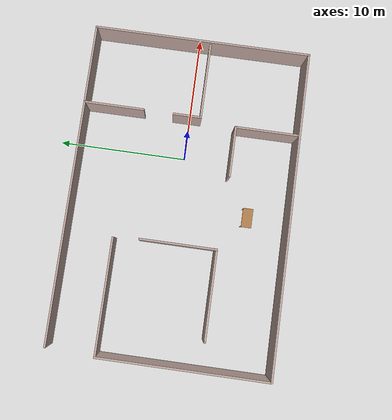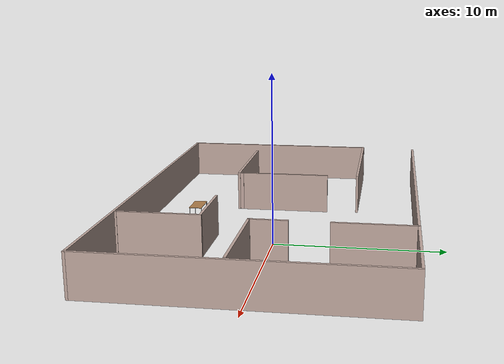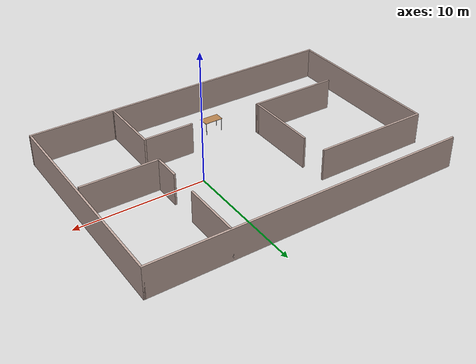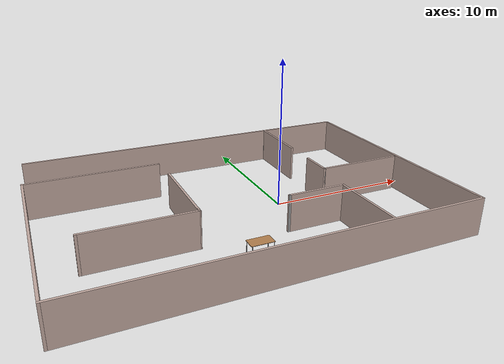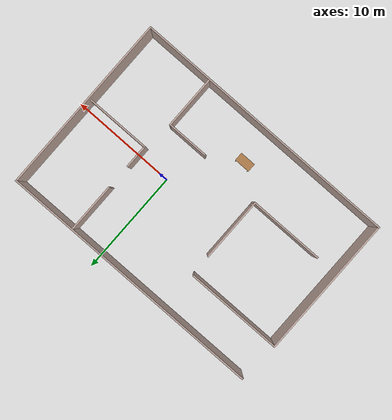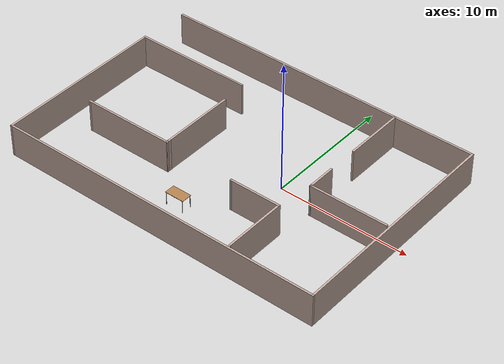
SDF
<sdf version="1.7">
 <world name="default">
  <light name="sun" type="directional">
   <pose>0 0 10 0 -0 0</pose>
   <diffuse>0.8 0.8 0.8 1</diffuse>
   <specular>0.2 0.2 0.2 1</specular>
   <attenuation>
    <range>1000</range>
    <constant>0.9</constant>
    <linear>0.01</linear>
    <quadratic>0.001</quadratic>
   </attenuation>
   <direction>-0.5 0.1 -0.9</direction>
   <spot><inner_angle>0</inner_angle><outer_angle>0</outer_angle><falloff>0</falloff></spot>
  </light>
  <gravity>0 0 -9.8</gravity>
  <magnetic_field>6e-06 2.3e-05 -4.2e-05</magnetic_field>
  <atmosphere type="adiabatic"/>
  <physics type="ode">
   <max_step_size>0.001</max_step_size>
   <real_time_factor>1</real_time_factor>
   <real_time_update_rate>1000</real_time_update_rate>
  </physics>
  <scene><ambient>0.4 0.4 0.4 1</ambient><background>0.7 0.7 0.7 1</background><shadows>1</shadows></scene>
  <spherical_coordinates>
   <surface_model>EARTH_WGS84</surface_model>
   <latitude_deg>0</latitude_deg>
   <longitude_deg>0</longitude_deg>
   <elevation>0</elevation>
   <heading_deg>0</heading_deg>
  </spherical_coordinates>
  <model name="vmsworld">
   <pose>-3.40589 -0.155021 0 0 -0 0</pose>
   <link name="Wall_37">
    <collision name="Wall_37_Collision">
     <geometry><box><size>25 0.15 2.5</size></box></geometry>
     <pose>0 0 1.25 0 -0 0</pose>
    </collision>
    <visual name="Wall_37_Visual">
     <pose>0 0 1.25 0 -0 0</pose>
     <geometry><box><size>25 0.15 2.5</size></box></geometry>
     <material>
      <script><uri>file://media/materials/scripts/gazebo.material</uri><name>Gazebo/Grey</name></script>
      <ambient>0.760784 0.662745 0.627451 1</ambient>
     </material>
     <meta><layer>0</layer></meta>
    </visual>
    <pose>0.125 8.425 0 0 -0 0</pose>
   </link>
   <link name="Wall_38">
    <collision name="Wall_38_Collision">
     <geometry><box><size>17 0.15 2.5</size></box></geometry>
     <pose>0 0 1.25 0 -0 0</pose>
    </collision>
    <visual name="Wall_38_Visual">
     <pose>0 0 1.25 0 -0 0</pose>
     <geometry><box><size>17 0.15 2.5</size></box></geometry>
     <material>
      <script><uri>file://media/materials/scripts/gazebo.material</uri><name>Gazebo/Grey</name></script>
      <ambient>0.760784 0.662745 0.627451 1</ambient>
     </material>
     <meta><layer>0</layer></meta>
    </visual>
    <pose>12.55 0 0 0 -0 -1.5708</pose>
   </link>
   <link name="Wall_39">
    <collision name="Wall_39_Collision">
     <geometry><box><size>25.25 0.15 2.5</size></box></geometry>
     <pose>0 0 1.25 0 -0 0</pose>
    </collision>
    <visual name="Wall_39_Visual">
     <pose>0 0 1.25 0 -0 0</pose>
     <geometry><box><size>25.25 0.15 2.5</size></box></geometry>
     <material>
      <script><uri>file://media/materials/scripts/gazebo.material</uri><name>Gazebo/Grey</name></script>
      <ambient>0.760784 0.662745 0.627451 1</ambient>
     </material>
     <meta><layer>0</layer></meta>
    </visual>
    <pose>0 -8.425 0 0 -0 3.14159</pose>
   </link>
   <link name="Wall_40">
    <collision name="Wall_40_Collision">
     <geometry><box><size>13.25 0.15 2.5</size></box></geometry>
     <pose>0 0 1.25 0 -0 0</pose>
    </collision>
    <visual name="Wall_40_Visual">
     <pose>0 0 1.25 0 -0 0</pose>
     <geometry><box><size>13.25 0.15 2.5</size></box></geometry>
     <material>
      <script><uri>file://media/materials/scripts/gazebo.material</uri><name>Gazebo/Grey</name></script>
      <ambient>0.760784 0.662745 0.627451 1</ambient>
     </material>
     <meta><layer>0</layer></meta>
    </visual>
    <pose>-12.55 -1.875 0 0 -0 1.5708</pose>
   </link>
   <link name="Wall_41">
    <collision name="Wall_41_Collision">
     <geometry><box><size>9 0.15 2.5</size></box></geometry>
     <pose>0 0 1.25 0 -0 0</pose>
    </collision>
    <visual name="Wall_41_Visual">
     <pose>0 0 1.25 0 -0 0</pose>
     <geometry><box><size>9 0.15 2.5</size></box></geometry>
     <material>
      <script><uri>file://media/materials/scripts/gazebo.material</uri><name>Gazebo/Grey</name></script>
      <ambient>0.760784 0.662745 0.627451 1</ambient>
     </material>
     <meta><layer>0</layer></meta>
    </visual>
    <pose>-8.125 4.675 0 0 -0 0</pose>
   </link>
   <link name="Wall_43">
    <collision name="Wall_43_Collision">
     <geometry><box><size>6 0.15 2.5</size></box></geometry>
     <pose>0 0 1.25 0 -0 0</pose>
    </collision>
    <visual name="Wall_43_Visual">
     <pose>0 0 1.25 0 -0 0</pose>
     <geometry><box><size>6 0.15 2.5</size></box></geometry>
     <material>
      <script><uri>file://media/materials/scripts/gazebo.material</uri><name>Gazebo/Grey</name></script>
      <ambient>0.760784 0.662745 0.627451 1</ambient>
     </material>
     <meta><layer>0</layer></meta>
    </visual>
    <pose>-3.51197 -0.277313 0 0 -0 -1.5708</pose>
   </link>
   <link name="Wall_44">
    <collision name="Wall_44_Collision">
     <geometry><box><size>0.16 0.15 2.5</size></box></geometry>
     <pose>0 0 1.25 0 -0 0</pose>
    </collision>
    <visual name="Wall_44_Visual">
     <pose>0 0 1.25 0 -0 0</pose>
     <geometry><box><size>0.16 0.15 2.5</size></box></geometry>
     <material>
      <script><uri>file://media/materials/scripts/gazebo.material</uri><name>Gazebo/Grey</name></script>
      <ambient>0.760784 0.662745 0.627451 1</ambient>
     </material>
     <meta><layer>0</layer></meta>
    </visual>
    <pose>-3.50697 -3.20231 0 0 -0 0</pose>
   </link>
   <link name="Wall_48">
    <collision name="Wall_48_Collision">
     <geometry><box><size>0.16 0.15 2.5</size></box></geometry>
     <pose>0 0 1.25 0 -0 0</pose>
    </collision>
    <visual name="Wall_48_Visual">
     <pose>0 0 1.25 0 -0 0</pose>
     <geometry><box><size>0.16 0.15 2.5</size></box></geometry>
     <material>
      <script><uri>file://media/materials/scripts/gazebo.material</uri><name>Gazebo/Grey</name></script>
      <ambient>1 1 1 1</ambient>
     </material>
     <meta><layer>0</layer></meta>
    </visual>
    <pose>6.42024 8.425 0 0 -0 0</pose>
   </link>
   <link name="Wall_49">
    <collision name="Wall_49_Collision">
     <geometry><box><size>4.75 0.15 2.5</size></box></geometry>
     <pose>0 0 1.25 0 -0 0</pose>
    </collision>
    <visual name="Wall_49_Visual">
     <pose>0 0 1.25 0 -0 0</pose>
     <geometry><box><size>4.75 0.15 2.5</size></box></geometry>
     <material>
      <script><uri>file://media/materials/scripts/gazebo.material</uri><name>Gazebo/Grey</name></script>
      <ambient>0.760784 0.662745 0.627451 1</ambient>
     </material>
     <meta><layer>0</layer></meta>
    </visual>
    <pose>6.42524 6.125 0 0 -0 -1.5708</pose>
   </link>
   <link name="Wall_51">
    <collision name="Wall_51_Collision">
     <geometry><box><size>2.25 0.15 2.5</size></box></geometry>
     <pose>0 0 1.25 0 -0 0</pose>
    </collision>
    <visual name="Wall_51_Visual">
     <pose>0 0 1.25 0 -0 0</pose>
     <geometry><box><size>2.25 0.15 2.5</size></box></geometry>
     <material>
      <script><uri>file://media/materials/scripts/gazebo.material</uri><name>Gazebo/Grey</name></script>
      <ambient>0.760784 0.662745 0.627451 1</ambient>
     </material>
     <meta><layer>0</layer></meta>
    </visual>
    <pose>6.41524 0.377127 0 0 -0 -1.5708</pose>
   </link>
   <link name="Wall_52">
    <collision name="Wall_52_Collision">
     <geometry><box><size>0.16 0.15 2.5</size></box></geometry>
     <pose>0 0 1.25 0 -0 0</pose>
    </collision>
    <visual name="Wall_52_Visual">
     <pose>0 0 1.25 0 -0 0</pose>
     <geometry><box><size>0.16 0.15 2.5</size></box></geometry>
     <material>
      <script><uri>file://media/materials/scripts/gazebo.material</uri><name>Gazebo/Grey</name></script>
      <ambient>1 1 1 1</ambient>
     </material>
     <meta><layer>0</layer></meta>
    </visual>
    <pose>6.42024 -0.672873 0 0 -0 0</pose>
   </link>
   <link name="Wall_53">
    <collision name="Wall_53_Collision">
     <geometry><box><size>6 0.15 2.5</size></box></geometry>
     <pose>0 0 1.25 0 -0 0</pose>
    </collision>
    <visual name="Wall_53_Visual">
     <pose>0 0 1.25 0 -0 0</pose>
     <geometry><box><size>6 0.15 2.5</size></box></geometry>
     <material>
      <script><uri>file://media/materials/scripts/gazebo.material</uri><name>Gazebo/Grey</name></script>
      <ambient>0.760784 0.662745 0.627451 1</ambient>
     </material>
     <meta><layer>0</layer></meta>
    </visual>
    <pose>9.35024 -0.672873 0 0 -0 0</pose>
   </link>
   <link name="Wall_55">
    <collision name="Wall_55_Collision">
     <geometry><box><size>0.38564 0.15 2.5</size></box></geometry>
     <pose>0 0 1.25 0 -0 0</pose>
    </collision>
    <visual name="Wall_55_Visual">
     <pose>0 0 1.25 0 -0 0</pose>
     <geometry><box><size>0.38564 0.15 2.5</size></box></geometry>
     <material>
      <script><uri>file://media/materials/scripts/gazebo.material</uri><name>Gazebo/Grey</name></script>
      <ambient>0.760784 0.662745 0.627451 1</ambient>
     </material>
     <meta><layer>0</layer></meta>
    </visual>
    <pose>-3.50697 -3.0846 0 0 -0 1.52835</pose>
   </link>
   <link name="Wall_57">
    <collision name="Wall_57_Collision">
     <geometry><box><size>7 0.15 2.5</size></box></geometry>
     <pose>0 0 1.25 0 -0 0</pose>
    </collision>
    <visual name="Wall_57_Visual">
     <pose>0 0 1.25 0 -0 0</pose>
     <geometry><box><size>7 0.15 2.5</size></box></geometry>
     <material>
      <script><uri>file://media/materials/scripts/gazebo.material</uri><name>Gazebo/Grey</name></script>
      <ambient>0.760784 0.662745 0.627451 1</ambient>
     </material>
     <meta><layer>0</layer></meta>
    </visual>
    <pose>-6.93697 -3.20231 0 0 -0 3.14159</pose>
   </link>
   <link name="Wall_58">
    <collision name="Wall_58_Collision">
     <geometry><box><size>0.16 0.15 2.5</size></box></geometry>
     <pose>0 0 1.25 0 -0 0</pose>
    </collision>
    <visual name="Wall_58_Visual">
     <pose>0 0 1.25 0 -0 0</pose>
     <geometry><box><size>0.16 0.15 2.5</size></box></geometry>
     <material>
      <script><uri>file://media/materials/scripts/gazebo.material</uri><name>Gazebo/Grey</name></script>
      <ambient>0.760784 0.662745 0.627451 1</ambient>
     </material>
     <meta><layer>0</layer></meta>
    </visual>
    <pose>-10.357 -3.20231 0 0 -0 0</pose>
   </link>
   <link name="Wall_62">
    <collision name="Wall_62_Collision">
     <geometry><box><size>5 0.15 2.5</size></box></geometry>
     <pose>0 0 1.25 0 -0 0</pose>
    </collision>
    <visual name="Wall_62_Visual">
     <pose>0 0 1.25 0 -0 0</pose>
     <geometry><box><size>5 0.15 2.5</size></box></geometry>
     <material>
      <script><uri>file://media/materials/scripts/gazebo.material</uri><name>Gazebo/Grey</name></script>
      <ambient>0.760784 0.662745 0.627451 1</ambient>
     </material>
     <meta><layer>0</layer></meta>
    </visual>
    <pose>6.02914 -5.88011 0 0 -0 -1.5708</pose>
   </link>
   <link name="Wall_63">
    <collision name="Wall_63_Collision">
     <geometry><box><size>0.16 0.15 2.5</size></box></geometry>
     <pose>0 0 1.25 0 -0 0</pose>
    </collision>
    <visual name="Wall_63_Visual">
     <pose>0 0 1.25 0 -0 0</pose>
     <geometry><box><size>0.16 0.15 2.5</size></box></geometry>
     <material>
      <script><uri>file://media/materials/scripts/gazebo.material</uri><name>Gazebo/Grey</name></script>
      <ambient>0.760784 0.662745 0.627451 1</ambient>
     </material>
     <meta><layer>0</layer></meta>
    </visual>
    <pose>6.03414 -8.30511 0 0 -0 0</pose>
   </link>
   <link name="Wall_65">
    <collision name="Wall_65_Collision">
     <geometry><box><size>4 0.15 2.5</size></box></geometry>
     <pose>0 0 1.25 0 -0 0</pose>
    </collision>
    <visual name="Wall_65_Visual">
     <pose>0 0 1.25 0 -0 0</pose>
     <geometry><box><size>4 0.15 2.5</size></box></geometry>
     <material>
      <script><uri>file://media/materials/scripts/gazebo.material</uri><name>Gazebo/Grey</name></script>
      <ambient>0.760784 0.662745 0.627451 1</ambient>
     </material>
     <meta><layer>0</layer></meta>
    </visual>
    <pose>4.10414 -3.45511 0 0 -0 3.14159</pose>
   </link>
   <link name="Wall_66">
    <collision name="Wall_66_Collision">
     <geometry><box><size>0.16 0.15 2.5</size></box></geometry>
     <pose>0 0 1.25 0 -0 0</pose>
    </collision>
    <visual name="Wall_66_Visual">
     <pose>0 0 1.25 0 -0 0</pose>
     <geometry><box><size>0.16 0.15 2.5</size></box></geometry>
     <material>
      <script><uri>file://media/materials/scripts/gazebo.material</uri><name>Gazebo/Grey</name></script>
      <ambient>1 1 1 1</ambient>
     </material>
     <meta><layer>0</layer></meta>
    </visual>
    <pose>2.18415 -3.45511 0 0 -0 0</pose>
   </link>
   <static>1</static>
  </model>
  <model name="table">
   <static>1</static>
   <link name="link21">
    <collision name="surface">
     <pose>0 0 1 0 -0 0</pose>
     <geometry><box><size>1.5 0.8 0.03</size></box></geometry>
     <surface><friction><ode><mu>0.6</mu><mu2>0.6</mu2></ode></friction></surface>
    </collision>
    <visual name="visual1">
     <pose>0 0 1 0 -0 0</pose>
     <geometry><box><size>1.5 0.8 0.03</size></box></geometry>
     <material>
      <script><uri>file://media/materials/scripts/gazebo.material</uri><name>Gazebo/Wood</name></script>
     </material>
    </visual>
    <collision name="front_left_leg">
     <pose>0.68 0.38 0.5 0 -0 0</pose>
     <geometry><cylinder><radius>0.02</radius><length>1</length></cylinder></geometry>
    </collision>
    <visual name="front_left_leg">
     <pose>0.68 0.38 0.5 0 -0 0</pose>
     <geometry><cylinder><radius>0.02</radius><length>1</length></cylinder></geometry>
     <material>
      <script><uri>file://media/materials/scripts/gazebo.material</uri><name>Gazebo/Grey</name></script>
     </material>
    </visual>
    <collision name="front_right_leg">
     <pose>0.68 -0.38 0.5 0 -0 0</pose>
     <geometry><cylinder><radius>0.02</radius><length>1</length></cylinder></geometry>
    </collision>
    <visual name="front_right_leg">
     <pose>0.68 -0.38 0.5 0 -0 0</pose>
     <geometry><cylinder><radius>0.02</radius><length>1</length></cylinder></geometry>
     <material>
      <script><uri>file://media/materials/scripts/gazebo.material</uri><name>Gazebo/Grey</name></script>
     </material>
    </visual>
    <collision name="back_right_leg">
     <pose>-0.68 -0.38 0.5 0 -0 0</pose>
     <geometry><cylinder><radius>0.02</radius><length>1</length></cylinder></geometry>
    </collision>
    <visual name="back_right_leg">
     <pose>-0.68 -0.38 0.5 0 -0 0</pose>
     <geometry><cylinder><radius>0.02</radius><length>1</length></cylinder></geometry>
     <material>
      <script><uri>file://media/materials/scripts/gazebo.material</uri><name>Gazebo/Grey</name></script>
     </material>
    </visual>
    <collision name="back_left_leg">
     <pose>-0.68 0.38 0.5 0 -0 0</pose>
     <geometry><cylinder><radius>0.02</radius><length>1</length></cylinder></geometry>
    </collision>
    <visual name="back_left_leg">
     <pose>-0.68 0.38 0.5 0 -0 0</pose>
     <geometry><cylinder><radius>0.02</radius><length>1</length></cylinder></geometry>
     <material>
      <script><uri>file://media/materials/scripts/gazebo.material</uri><name>Gazebo/Grey</name></script>
     </material>
    </visual>
   </link>
   <pose>-4.09891 -5.5066 0 0 -0 0</pose>
  </model>
 </world>
</sdf>
